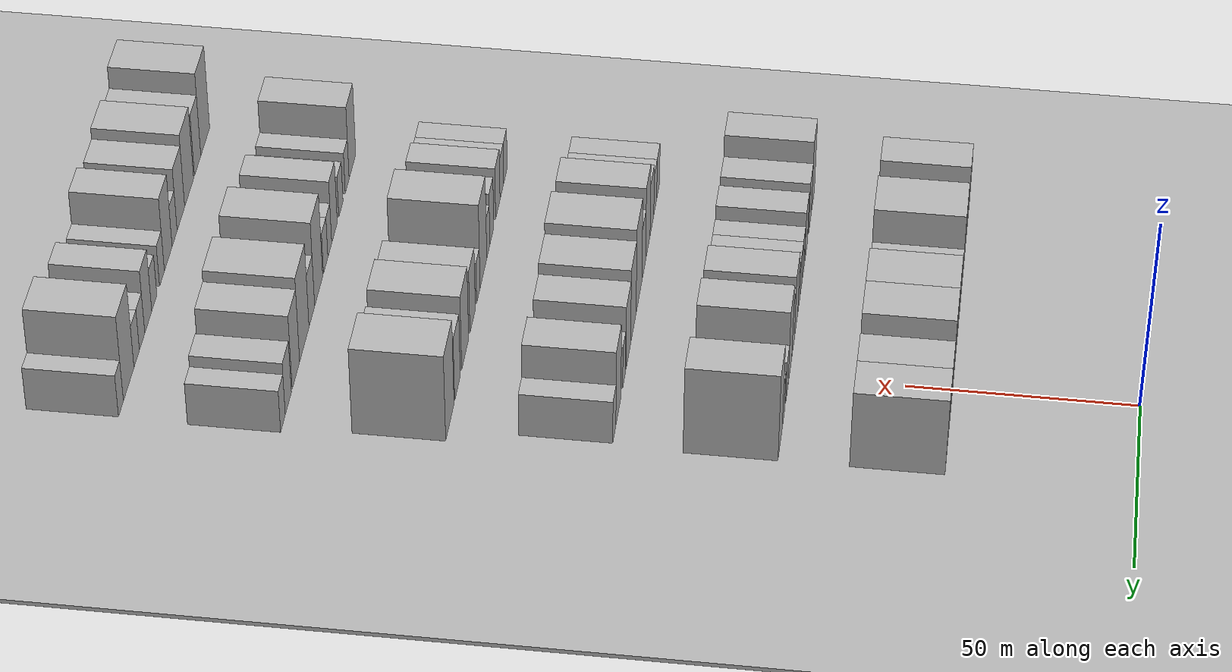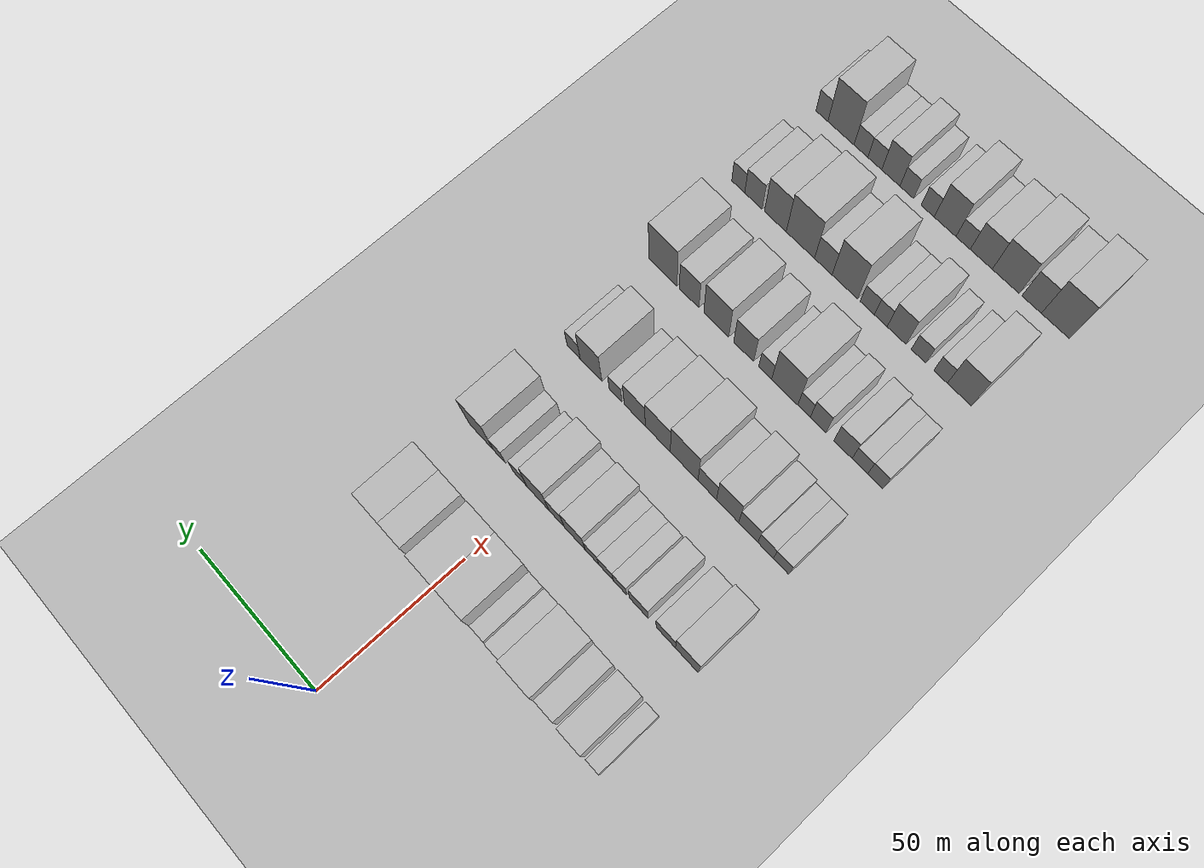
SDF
<sdf version="1.6">
 <world name="default">
  <include><name>ground_plane_1</name><uri>model://HANNAS_ground_plane</uri></include>
  <include>
   <name>ground_plane_2</name>
   <uri>model://HANNAS_ground_plane</uri>
   <pose>100 0 0  0 0 0</pose>
  </include>
  <model name="building_57">
   <static>1</static>
   <pose>50.0000 -62.6605 0 0.000000 0.000000 0.000000</pose>
   <link name="link">
    <pose>0 0 6.00 0 0 0</pose>
    <collision name="collision"><geometry><box><size>20.0000 4.8509 12.0000</size></box></geometry></collision>
    <visual name="visual">
     <cast_shadows>0</cast_shadows>
     <geometry><box><size>20.0000 4.8509 12.0000</size></box></geometry>
     <material>
      <script>
       <uri>model://HANNAS_wall/materials/scripts</uri>
       <uri>model://HANNAS_wall/materials/textures</uri>
       <name>vrc/HANNAS_wall</name>
      </script>
     </material>
    </visual>
   </link>
  </model>
  <model name="building_58">
   <static>1</static>
   <pose>50.0000 -54.9417 0 0.000000 0.000000 0.000000</pose>
   <link name="link">
    <pose>0 0 10.50 0 0 0</pose>
    <collision name="collision"><geometry><box><size>20.0000 8.5869 21.0000</size></box></geometry></collision>
    <visual name="visual">
     <cast_shadows>0</cast_shadows>
     <geometry><box><size>20.0000 8.5869 21.0000</size></box></geometry>
     <material>
      <script>
       <uri>model://HANNAS_wall/materials/scripts</uri>
       <uri>model://HANNAS_wall/materials/textures</uri>
       <name>vrc/HANNAS_wall</name>
      </script>
     </material>
    </visual>
   </link>
  </model>
  <model name="building_59">
   <static>1</static>
   <pose>50.0000 -45.0534 0 0.000000 0.000000 0.000000</pose>
   <link name="link">
    <pose>0 0 7.50 0 0 0</pose>
    <collision name="collision"><geometry><box><size>20.0000 7.1895 15.0000</size></box></geometry></collision>
    <visual name="visual">
     <cast_shadows>0</cast_shadows>
     <geometry><box><size>20.0000 7.1895 15.0000</size></box></geometry>
     <material>
      <script>
       <uri>model://HANNAS_wall/materials/scripts</uri>
       <uri>model://HANNAS_wall/materials/textures</uri>
       <name>vrc/HANNAS_wall</name>
      </script>
     </material>
    </visual>
   </link>
  </model>
  <model name="building_60">
   <static>1</static>
   <pose>50.0000 -35.5189 0 0.000000 0.000000 0.000000</pose>
   <link name="link">
    <pose>0 0 12.00 0 0 0</pose>
    <collision name="collision"><geometry><box><size>20.0000 11.8795 24.0000</size></box></geometry></collision>
    <visual name="visual">
     <cast_shadows>0</cast_shadows>
     <geometry><box><size>20.0000 11.8795 24.0000</size></box></geometry>
     <material>
      <script>
       <uri>model://HANNAS_wall/materials/scripts</uri>
       <uri>model://HANNAS_wall/materials/textures</uri>
       <name>vrc/HANNAS_wall</name>
      </script>
     </material>
    </visual>
   </link>
  </model>
  <model name="building_61">
   <static>1</static>
   <pose>50.0000 -26.2360 0 0.000000 0.000000 0.000000</pose>
   <link name="link">
    <pose>0 0 7.50 0 0 0</pose>
    <collision name="collision"><geometry><box><size>20.0000 6.6863 15.0000</size></box></geometry></collision>
    <visual name="visual">
     <cast_shadows>0</cast_shadows>
     <geometry><box><size>20.0000 6.6863 15.0000</size></box></geometry>
     <material>
      <script>
       <uri>model://HANNAS_wall/materials/scripts</uri>
       <uri>model://HANNAS_wall/materials/textures</uri>
       <name>vrc/HANNAS_wall</name>
      </script>
     </material>
    </visual>
   </link>
  </model>
  <model name="building_62">
   <static>1</static>
   <pose>50.0000 -19.1876 0 0.000000 0.000000 0.000000</pose>
   <link name="link">
    <pose>0 0 6.00 0 0 0</pose>
    <collision name="collision"><geometry><box><size>20.0000 5.4104 12.0000</size></box></geometry></collision>
    <visual name="visual">
     <cast_shadows>0</cast_shadows>
     <geometry><box><size>20.0000 5.4104 12.0000</size></box></geometry>
     <material>
      <script>
       <uri>model://HANNAS_wall/materials/scripts</uri>
       <uri>model://HANNAS_wall/materials/textures</uri>
       <name>vrc/HANNAS_wall</name>
      </script>
     </material>
    </visual>
   </link>
  </model>
  <model name="building_63">
   <static>1</static>
   <pose>50.0000 -11.0453 0 0.000000 0.000000 0.000000</pose>
   <link name="link">
    <pose>0 0 12.00 0 0 0</pose>
    <collision name="collision"><geometry><box><size>20.0000 10.8742 24.0000</size></box></geometry></collision>
    <visual name="visual">
     <cast_shadows>0</cast_shadows>
     <geometry><box><size>20.0000 10.8742 24.0000</size></box></geometry>
     <material>
      <script>
       <uri>model://HANNAS_wall/materials/scripts</uri>
       <uri>model://HANNAS_wall/materials/textures</uri>
       <name>vrc/HANNAS_wall</name>
      </script>
     </material>
    </visual>
   </link>
  </model>
  <model name="building_64">
   <static>1</static>
   <pose>50.0000 -0.2225 0 0.000000 0.000000 0.000000</pose>
   <link name="link">
    <pose>0 0 12.00 0 0 0</pose>
    <collision name="collision"><geometry><box><size>20.0000 10.7716 24.0000</size></box></geometry></collision>
    <visual name="visual">
     <cast_shadows>0</cast_shadows>
     <geometry><box><size>20.0000 10.7716 24.0000</size></box></geometry>
     <material>
      <script>
       <uri>model://HANNAS_wall/materials/scripts</uri>
       <uri>model://HANNAS_wall/materials/textures</uri>
       <name>vrc/HANNAS_wall</name>
      </script>
     </material>
    </visual>
   </link>
  </model>
  <model name="building_65">
   <static>1</static>
   <pose>50.0000 12.5621 0 0.000000 0.000000 0.000000</pose>
   <link name="link">
    <pose>0 0 10.50 0 0 0</pose>
    <collision name="collision"><geometry><box><size>20.0000 8.7975 21.0000</size></box></geometry></collision>
    <visual name="visual">
     <cast_shadows>0</cast_shadows>
     <geometry><box><size>20.0000 8.7975 21.0000</size></box></geometry>
     <material>
      <script>
       <uri>model://HANNAS_wall/materials/scripts</uri>
       <uri>model://HANNAS_wall/materials/textures</uri>
       <name>vrc/HANNAS_wall</name>
      </script>
     </material>
    </visual>
   </link>
  </model>
  <model name="building_66">
   <static>1</static>
   <pose>50.0000 22.1153 0 0.000000 0.000000 0.000000</pose>
   <link name="link">
    <pose>0 0 10.50 0 0 0</pose>
    <collision name="collision"><geometry><box><size>20.0000 10.3089 21.0000</size></box></geometry></collision>
    <visual name="visual">
     <cast_shadows>0</cast_shadows>
     <geometry><box><size>20.0000 10.3089 21.0000</size></box></geometry>
     <material>
      <script>
       <uri>model://HANNAS_wall/materials/scripts</uri>
       <uri>model://HANNAS_wall/materials/textures</uri>
       <name>vrc/HANNAS_wall</name>
      </script>
     </material>
    </visual>
   </link>
  </model>
  <model name="building_188">
   <static>1</static>
   <pose>85.0000 -59.6021 0 0.000000 0.000000 0.000000</pose>
   <link name="link">
    <pose>0 0 10.50 0 0 0</pose>
    <collision name="collision"><geometry><box><size>20.0000 8.5717 21.0000</size></box></geometry></collision>
    <visual name="visual">
     <cast_shadows>0</cast_shadows>
     <geometry><box><size>20.0000 8.5717 21.0000</size></box></geometry>
     <material>
      <script>
       <uri>model://HANNAS_wall/materials/scripts</uri>
       <uri>model://HANNAS_wall/materials/textures</uri>
       <name>vrc/HANNAS_wall</name>
      </script>
     </material>
    </visual>
   </link>
  </model>
  <model name="building_189">
   <static>1</static>
   <pose>85.0000 -51.6376 0 0.000000 0.000000 0.000000</pose>
   <link name="link">
    <pose>0 0 7.50 0 0 0</pose>
    <collision name="collision"><geometry><box><size>20.0000 7.3575 15.0000</size></box></geometry></collision>
    <visual name="visual">
     <cast_shadows>0</cast_shadows>
     <geometry><box><size>20.0000 7.3575 15.0000</size></box></geometry>
     <material>
      <script>
       <uri>model://HANNAS_wall/materials/scripts</uri>
       <uri>model://HANNAS_wall/materials/textures</uri>
       <name>vrc/HANNAS_wall</name>
      </script>
     </material>
    </visual>
   </link>
  </model>
  <model name="building_190">
   <static>1</static>
   <pose>85.0000 -41.3064 0 0.000000 0.000000 0.000000</pose>
   <link name="link">
    <pose>0 0 7.50 0 0 0</pose>
    <collision name="collision"><geometry><box><size>20.0000 7.3048 15.0000</size></box></geometry></collision>
    <visual name="visual">
     <cast_shadows>0</cast_shadows>
     <geometry><box><size>20.0000 7.3048 15.0000</size></box></geometry>
     <material>
      <script>
       <uri>model://HANNAS_wall/materials/scripts</uri>
       <uri>model://HANNAS_wall/materials/textures</uri>
       <name>vrc/HANNAS_wall</name>
      </script>
     </material>
    </visual>
   </link>
  </model>
  <model name="building_191">
   <static>1</static>
   <pose>85.0000 -34.0402 0 0.000000 0.000000 0.000000</pose>
   <link name="link">
    <pose>0 0 6.00 0 0 0</pose>
    <collision name="collision"><geometry><box><size>20.0000 5.2277 12.0000</size></box></geometry></collision>
    <visual name="visual">
     <cast_shadows>0</cast_shadows>
     <geometry><box><size>20.0000 5.2277 12.0000</size></box></geometry>
     <material>
      <script>
       <uri>model://HANNAS_wall/materials/scripts</uri>
       <uri>model://HANNAS_wall/materials/textures</uri>
       <name>vrc/HANNAS_wall</name>
      </script>
     </material>
    </visual>
   </link>
  </model>
  <model name="building_192">
   <static>1</static>
   <pose>85.0000 -28.5449 0 0.000000 0.000000 0.000000</pose>
   <link name="link">
    <pose>0 0 6.00 0 0 0</pose>
    <collision name="collision"><geometry><box><size>20.0000 5.7628 12.0000</size></box></geometry></collision>
    <visual name="visual">
     <cast_shadows>0</cast_shadows>
     <geometry><box><size>20.0000 5.7628 12.0000</size></box></geometry>
     <material>
      <script>
       <uri>model://HANNAS_wall/materials/scripts</uri>
       <uri>model://HANNAS_wall/materials/textures</uri>
       <name>vrc/HANNAS_wall</name>
      </script>
     </material>
    </visual>
   </link>
  </model>
  <model name="building_193">
   <static>1</static>
   <pose>85.0000 -23.0391 0 0.000000 0.000000 0.000000</pose>
   <link name="link">
    <pose>0 0 6.00 0 0 0</pose>
    <collision name="collision"><geometry><box><size>20.0000 5.2488 12.0000</size></box></geometry></collision>
    <visual name="visual">
     <cast_shadows>0</cast_shadows>
     <geometry><box><size>20.0000 5.2488 12.0000</size></box></geometry>
     <material>
      <script>
       <uri>model://HANNAS_wall/materials/scripts</uri>
       <uri>model://HANNAS_wall/materials/textures</uri>
       <name>vrc/HANNAS_wall</name>
      </script>
     </material>
    </visual>
   </link>
  </model>
  <model name="building_194">
   <static>1</static>
   <pose>85.0000 -16.1703 0 0.000000 0.000000 0.000000</pose>
   <link name="link">
    <pose>0 0 9.00 0 0 0</pose>
    <collision name="collision"><geometry><box><size>20.0000 8.4888 18.0000</size></box></geometry></collision>
    <visual name="visual">
     <cast_shadows>0</cast_shadows>
     <geometry><box><size>20.0000 8.4888 18.0000</size></box></geometry>
     <material>
      <script>
       <uri>model://HANNAS_wall/materials/scripts</uri>
       <uri>model://HANNAS_wall/materials/textures</uri>
       <name>vrc/HANNAS_wall</name>
      </script>
     </material>
    </visual>
   </link>
  </model>
  <model name="building_195">
   <static>1</static>
   <pose>85.0000 -8.8345 0 0.000000 0.000000 0.000000</pose>
   <link name="link">
    <pose>0 0 7.50 0 0 0</pose>
    <collision name="collision"><geometry><box><size>20.0000 6.1828 15.0000</size></box></geometry></collision>
    <visual name="visual">
     <cast_shadows>0</cast_shadows>
     <geometry><box><size>20.0000 6.1828 15.0000</size></box></geometry>
     <material>
      <script>
       <uri>model://HANNAS_wall/materials/scripts</uri>
       <uri>model://HANNAS_wall/materials/textures</uri>
       <name>vrc/HANNAS_wall</name>
      </script>
     </material>
    </visual>
   </link>
  </model>
  <model name="building_196">
   <static>1</static>
   <pose>85.0000 -1.1689 0 0.000000 0.000000 0.000000</pose>
   <link name="link">
    <pose>0 0 10.50 0 0 0</pose>
    <collision name="collision"><geometry><box><size>20.0000 9.1485 21.0000</size></box></geometry></collision>
    <visual name="visual">
     <cast_shadows>0</cast_shadows>
     <geometry><box><size>20.0000 9.1485 21.0000</size></box></geometry>
     <material>
      <script>
       <uri>model://HANNAS_wall/materials/scripts</uri>
       <uri>model://HANNAS_wall/materials/textures</uri>
       <name>vrc/HANNAS_wall</name>
      </script>
     </material>
    </visual>
   </link>
  </model>
  <model name="building_197">
   <static>1</static>
   <pose>85.0000 6.3032 0 0.000000 0.000000 0.000000</pose>
   <link name="link">
    <pose>0 0 6.00 0 0 0</pose>
    <collision name="collision"><geometry><box><size>20.0000 5.7957 12.0000</size></box></geometry></collision>
    <visual name="visual">
     <cast_shadows>0</cast_shadows>
     <geometry><box><size>20.0000 5.7957 12.0000</size></box></geometry>
     <material>
      <script>
       <uri>model://HANNAS_wall/materials/scripts</uri>
       <uri>model://HANNAS_wall/materials/textures</uri>
       <name>vrc/HANNAS_wall</name>
      </script>
     </material>
    </visual>
   </link>
  </model>
  <model name="building_198">
   <static>1</static>
   <pose>85.0000 14.7260 0 0.000000 0.000000 0.000000</pose>
   <link name="link">
    <pose>0 0 6.00 0 0 0</pose>
    <collision name="collision"><geometry><box><size>20.0000 5.0498 12.0000</size></box></geometry></collision>
    <visual name="visual">
     <cast_shadows>0</cast_shadows>
     <geometry><box><size>20.0000 5.0498 12.0000</size></box></geometry>
     <material>
      <script>
       <uri>model://HANNAS_wall/materials/scripts</uri>
       <uri>model://HANNAS_wall/materials/textures</uri>
       <name>vrc/HANNAS_wall</name>
      </script>
     </material>
    </visual>
   </link>
  </model>
  <model name="building_199">
   <static>1</static>
   <pose>85.0000 22.2918 0 0.000000 0.000000 0.000000</pose>
   <link name="link">
    <pose>0 0 12.00 0 0 0</pose>
    <collision name="collision"><geometry><box><size>20.0000 10.0819 24.0000</size></box></geometry></collision>
    <visual name="visual">
     <cast_shadows>0</cast_shadows>
     <geometry><box><size>20.0000 10.0819 24.0000</size></box></geometry>
     <material>
      <script>
       <uri>model://HANNAS_wall/materials/scripts</uri>
       <uri>model://HANNAS_wall/materials/textures</uri>
       <name>vrc/HANNAS_wall</name>
      </script>
     </material>
    </visual>
   </link>
  </model>
  <model name="building_310">
   <static>1</static>
   <pose>120.0000 -59.1007 0 0.000000 0.000000 0.000000</pose>
   <link name="link">
    <pose>0 0 6.00 0 0 0</pose>
    <collision name="collision"><geometry><box><size>20.0000 5.8062 12.0000</size></box></geometry></collision>
    <visual name="visual">
     <cast_shadows>0</cast_shadows>
     <geometry><box><size>20.0000 5.8062 12.0000</size></box></geometry>
     <material>
      <script>
       <uri>model://HANNAS_wall/materials/scripts</uri>
       <uri>model://HANNAS_wall/materials/textures</uri>
       <name>vrc/HANNAS_wall</name>
      </script>
     </material>
    </visual>
   </link>
  </model>
  <model name="building_311">
   <static>1</static>
   <pose>120.0000 -53.2488 0 0.000000 0.000000 0.000000</pose>
   <link name="link">
    <pose>0 0 6.00 0 0 0</pose>
    <collision name="collision"><geometry><box><size>20.0000 5.8976 12.0000</size></box></geometry></collision>
    <visual name="visual">
     <cast_shadows>0</cast_shadows>
     <geometry><box><size>20.0000 5.8976 12.0000</size></box></geometry>
     <material>
      <script>
       <uri>model://HANNAS_wall/materials/scripts</uri>
       <uri>model://HANNAS_wall/materials/textures</uri>
       <name>vrc/HANNAS_wall</name>
      </script>
     </material>
    </visual>
   </link>
  </model>
  <model name="building_312">
   <static>1</static>
   <pose>120.0000 -46.6303 0 0.000000 0.000000 0.000000</pose>
   <link name="link">
    <pose>0 0 7.50 0 0 0</pose>
    <collision name="collision"><geometry><box><size>20.0000 7.3393 15.0000</size></box></geometry></collision>
    <visual name="visual">
     <cast_shadows>0</cast_shadows>
     <geometry><box><size>20.0000 7.3393 15.0000</size></box></geometry>
     <material>
      <script>
       <uri>model://HANNAS_wall/materials/scripts</uri>
       <uri>model://HANNAS_wall/materials/textures</uri>
       <name>vrc/HANNAS_wall</name>
      </script>
     </material>
    </visual>
   </link>
  </model>
  <model name="building_313">
   <static>1</static>
   <pose>120.0000 -38.6594 0 0.000000 0.000000 0.000000</pose>
   <link name="link">
    <pose>0 0 10.50 0 0 0</pose>
    <collision name="collision"><geometry><box><size>20.0000 8.6024 21.0000</size></box></geometry></collision>
    <visual name="visual">
     <cast_shadows>0</cast_shadows>
     <geometry><box><size>20.0000 8.6024 21.0000</size></box></geometry>
     <material>
      <script>
       <uri>model://HANNAS_wall/materials/scripts</uri>
       <uri>model://HANNAS_wall/materials/textures</uri>
       <name>vrc/HANNAS_wall</name>
      </script>
     </material>
    </visual>
   </link>
  </model>
  <model name="building_314">
   <static>1</static>
   <pose>120.0000 -30.7536 0 0.000000 0.000000 0.000000</pose>
   <link name="link">
    <pose>0 0 7.50 0 0 0</pose>
    <collision name="collision"><geometry><box><size>20.0000 7.2092 15.0000</size></box></geometry></collision>
    <visual name="visual">
     <cast_shadows>0</cast_shadows>
     <geometry><box><size>20.0000 7.2092 15.0000</size></box></geometry>
     <material>
      <script>
       <uri>model://HANNAS_wall/materials/scripts</uri>
       <uri>model://HANNAS_wall/materials/textures</uri>
       <name>vrc/HANNAS_wall</name>
      </script>
     </material>
    </visual>
   </link>
  </model>
  <model name="building_315">
   <static>1</static>
   <pose>120.0000 -21.6644 0 0.000000 0.000000 0.000000</pose>
   <link name="link">
    <pose>0 0 12.00 0 0 0</pose>
    <collision name="collision"><geometry><box><size>20.0000 10.9693 24.0000</size></box></geometry></collision>
    <visual name="visual">
     <cast_shadows>0</cast_shadows>
     <geometry><box><size>20.0000 10.9693 24.0000</size></box></geometry>
     <material>
      <script>
       <uri>model://HANNAS_wall/materials/scripts</uri>
       <uri>model://HANNAS_wall/materials/textures</uri>
       <name>vrc/HANNAS_wall</name>
      </script>
     </material>
    </visual>
   </link>
  </model>
  <model name="building_316">
   <static>1</static>
   <pose>120.0000 -11.1569 0 0.000000 0.000000 0.000000</pose>
   <link name="link">
    <pose>0 0 10.50 0 0 0</pose>
    <collision name="collision"><geometry><box><size>20.0000 10.0457 21.0000</size></box></geometry></collision>
    <visual name="visual">
     <cast_shadows>0</cast_shadows>
     <geometry><box><size>20.0000 10.0457 21.0000</size></box></geometry>
     <material>
      <script>
       <uri>model://HANNAS_wall/materials/scripts</uri>
       <uri>model://HANNAS_wall/materials/textures</uri>
       <name>vrc/HANNAS_wall</name>
      </script>
     </material>
    </visual>
   </link>
  </model>
  <model name="building_317">
   <static>1</static>
   <pose>120.0000 -1.8390 0 0.000000 0.000000 0.000000</pose>
   <link name="link">
    <pose>0 0 9.00 0 0 0</pose>
    <collision name="collision"><geometry><box><size>20.0000 8.5903 18.0000</size></box></geometry></collision>
    <visual name="visual">
     <cast_shadows>0</cast_shadows>
     <geometry><box><size>20.0000 8.5903 18.0000</size></box></geometry>
     <material>
      <script>
       <uri>model://HANNAS_wall/materials/scripts</uri>
       <uri>model://HANNAS_wall/materials/textures</uri>
       <name>vrc/HANNAS_wall</name>
      </script>
     </material>
    </visual>
   </link>
  </model>
  <model name="building_318">
   <static>1</static>
   <pose>120.0000 6.0576 0 0.000000 0.000000 0.000000</pose>
   <link name="link">
    <pose>0 0 6.00 0 0 0</pose>
    <collision name="collision"><geometry><box><size>20.0000 5.2028 12.0000</size></box></geometry></collision>
    <visual name="visual">
     <cast_shadows>0</cast_shadows>
     <geometry><box><size>20.0000 5.2028 12.0000</size></box></geometry>
     <material>
      <script>
       <uri>model://HANNAS_wall/materials/scripts</uri>
       <uri>model://HANNAS_wall/materials/textures</uri>
       <name>vrc/HANNAS_wall</name>
      </script>
     </material>
    </visual>
   </link>
  </model>
  <model name="building_319">
   <static>1</static>
   <pose>120.0000 16.2037 0 0.000000 0.000000 0.000000</pose>
   <link name="link">
    <pose>0 0 10.50 0 0 0</pose>
    <collision name="collision"><geometry><box><size>20.0000 9.0895 21.0000</size></box></geometry></collision>
    <visual name="visual">
     <cast_shadows>0</cast_shadows>
     <geometry><box><size>20.0000 9.0895 21.0000</size></box></geometry>
     <material>
      <script>
       <uri>model://HANNAS_wall/materials/scripts</uri>
       <uri>model://HANNAS_wall/materials/textures</uri>
       <name>vrc/HANNAS_wall</name>
      </script>
     </material>
    </visual>
   </link>
  </model>
  <model name="building_320">
   <static>1</static>
   <pose>120.0000 23.4891 0 0.000000 0.000000 0.000000</pose>
   <link name="link">
    <pose>0 0 6.00 0 0 0</pose>
    <collision name="collision"><geometry><box><size>20.0000 5.4814 12.0000</size></box></geometry></collision>
    <visual name="visual">
     <cast_shadows>0</cast_shadows>
     <geometry><box><size>20.0000 5.4814 12.0000</size></box></geometry>
     <material>
      <script>
       <uri>model://HANNAS_wall/materials/scripts</uri>
       <uri>model://HANNAS_wall/materials/textures</uri>
       <name>vrc/HANNAS_wall</name>
      </script>
     </material>
    </visual>
   </link>
  </model>
  <model name="building_438">
   <static>1</static>
   <pose>155.0000 -60.2337 0 0.000000 0.000000 0.000000</pose>
   <link name="link">
    <pose>0 0 6.00 0 0 0</pose>
    <collision name="collision"><geometry><box><size>20.0000 5.6751 12.0000</size></box></geometry></collision>
    <visual name="visual">
     <cast_shadows>0</cast_shadows>
     <geometry><box><size>20.0000 5.6751 12.0000</size></box></geometry>
     <material>
      <script>
       <uri>model://HANNAS_wall/materials/scripts</uri>
       <uri>model://HANNAS_wall/materials/textures</uri>
       <name>vrc/HANNAS_wall</name>
      </script>
     </material>
    </visual>
   </link>
  </model>
  <model name="building_439">
   <static>1</static>
   <pose>155.0000 -54.4654 0 0.000000 0.000000 0.000000</pose>
   <link name="link">
    <pose>0 0 6.00 0 0 0</pose>
    <collision name="collision"><geometry><box><size>20.0000 5.8616 12.0000</size></box></geometry></collision>
    <visual name="visual">
     <cast_shadows>0</cast_shadows>
     <geometry><box><size>20.0000 5.8616 12.0000</size></box></geometry>
     <material>
      <script>
       <uri>model://HANNAS_wall/materials/scripts</uri>
       <uri>model://HANNAS_wall/materials/textures</uri>
       <name>vrc/HANNAS_wall</name>
      </script>
     </material>
    </visual>
   </link>
  </model>
  <model name="building_440">
   <static>1</static>
   <pose>155.0000 -48.0417 0 0.000000 0.000000 0.000000</pose>
   <link name="link">
    <pose>0 0 7.50 0 0 0</pose>
    <collision name="collision"><geometry><box><size>20.0000 6.9860 15.0000</size></box></geometry></collision>
    <visual name="visual">
     <cast_shadows>0</cast_shadows>
     <geometry><box><size>20.0000 6.9860 15.0000</size></box></geometry>
     <material>
      <script>
       <uri>model://HANNAS_wall/materials/scripts</uri>
       <uri>model://HANNAS_wall/materials/textures</uri>
       <name>vrc/HANNAS_wall</name>
      </script>
     </material>
    </visual>
   </link>
  </model>
  <model name="building_441">
   <static>1</static>
   <pose>155.0000 -38.5139 0 0.000000 0.000000 0.000000</pose>
   <link name="link">
    <pose>0 0 7.50 0 0 0</pose>
    <collision name="collision"><geometry><box><size>20.0000 6.0696 15.0000</size></box></geometry></collision>
    <visual name="visual">
     <cast_shadows>0</cast_shadows>
     <geometry><box><size>20.0000 6.0696 15.0000</size></box></geometry>
     <material>
      <script>
       <uri>model://HANNAS_wall/materials/scripts</uri>
       <uri>model://HANNAS_wall/materials/textures</uri>
       <name>vrc/HANNAS_wall</name>
      </script>
     </material>
    </visual>
   </link>
  </model>
  <model name="building_442">
   <static>1</static>
   <pose>155.0000 -33.0267 0 0.000000 0.000000 0.000000</pose>
   <link name="link">
    <pose>0 0 6.00 0 0 0</pose>
    <collision name="collision"><geometry><box><size>20.0000 4.9047 12.0000</size></box></geometry></collision>
    <visual name="visual">
     <cast_shadows>0</cast_shadows>
     <geometry><box><size>20.0000 4.9047 12.0000</size></box></geometry>
     <material>
      <script>
       <uri>model://HANNAS_wall/materials/scripts</uri>
       <uri>model://HANNAS_wall/materials/textures</uri>
       <name>vrc/HANNAS_wall</name>
      </script>
     </material>
    </visual>
   </link>
  </model>
  <model name="building_443">
   <static>1</static>
   <pose>155.0000 -25.4386 0 0.000000 0.000000 0.000000</pose>
   <link name="link">
    <pose>0 0 12.00 0 0 0</pose>
    <collision name="collision"><geometry><box><size>20.0000 10.2717 24.0000</size></box></geometry></collision>
    <visual name="visual">
     <cast_shadows>0</cast_shadows>
     <geometry><box><size>20.0000 10.2717 24.0000</size></box></geometry>
     <material>
      <script>
       <uri>model://HANNAS_wall/materials/scripts</uri>
       <uri>model://HANNAS_wall/materials/textures</uri>
       <name>vrc/HANNAS_wall</name>
      </script>
     </material>
    </visual>
   </link>
  </model>
  <model name="building_444">
   <static>1</static>
   <pose>155.0000 -17.7082 0 0.000000 0.000000 0.000000</pose>
   <link name="link">
    <pose>0 0 6.00 0 0 0</pose>
    <collision name="collision"><geometry><box><size>20.0000 5.1890 12.0000</size></box></geometry></collision>
    <visual name="visual">
     <cast_shadows>0</cast_shadows>
     <geometry><box><size>20.0000 5.1890 12.0000</size></box></geometry>
     <material>
      <script>
       <uri>model://HANNAS_wall/materials/scripts</uri>
       <uri>model://HANNAS_wall/materials/textures</uri>
       <name>vrc/HANNAS_wall</name>
      </script>
     </material>
    </visual>
   </link>
  </model>
  <model name="building_445">
   <static>1</static>
   <pose>155.0000 -9.0991 0 0.000000 0.000000 0.000000</pose>
   <link name="link">
    <pose>0 0 9.00 0 0 0</pose>
    <collision name="collision"><geometry><box><size>20.0000 8.0292 18.0000</size></box></geometry></collision>
    <visual name="visual">
     <cast_shadows>0</cast_shadows>
     <geometry><box><size>20.0000 8.0292 18.0000</size></box></geometry>
     <material>
      <script>
       <uri>model://HANNAS_wall/materials/scripts</uri>
       <uri>model://HANNAS_wall/materials/textures</uri>
       <name>vrc/HANNAS_wall</name>
      </script>
     </material>
    </visual>
   </link>
  </model>
  <model name="building_446">
   <static>1</static>
   <pose>155.0000 2.0157 0 0.000000 0.000000 0.000000</pose>
   <link name="link">
    <pose>0 0 10.50 0 0 0</pose>
    <collision name="collision"><geometry><box><size>20.0000 10.2005 21.0000</size></box></geometry></collision>
    <visual name="visual">
     <cast_shadows>0</cast_shadows>
     <geometry><box><size>20.0000 10.2005 21.0000</size></box></geometry>
     <material>
      <script>
       <uri>model://HANNAS_wall/materials/scripts</uri>
       <uri>model://HANNAS_wall/materials/textures</uri>
       <name>vrc/HANNAS_wall</name>
      </script>
     </material>
    </visual>
   </link>
  </model>
  <model name="building_447">
   <static>1</static>
   <pose>155.0000 13.1643 0 0.000000 0.000000 0.000000</pose>
   <link name="link">
    <pose>0 0 9.00 0 0 0</pose>
    <collision name="collision"><geometry><box><size>20.0000 8.0966 18.0000</size></box></geometry></collision>
    <visual name="visual">
     <cast_shadows>0</cast_shadows>
     <geometry><box><size>20.0000 8.0966 18.0000</size></box></geometry>
     <material>
      <script>
       <uri>model://HANNAS_wall/materials/scripts</uri>
       <uri>model://HANNAS_wall/materials/textures</uri>
       <name>vrc/HANNAS_wall</name>
      </script>
     </material>
    </visual>
   </link>
  </model>
  <model name="building_448">
   <static>1</static>
   <pose>155.0000 24.0950 0 0.000000 0.000000 0.000000</pose>
   <link name="link">
    <pose>0 0 12.00 0 0 0</pose>
    <collision name="collision"><geometry><box><size>20.0000 11.7648 24.0000</size></box></geometry></collision>
    <visual name="visual">
     <cast_shadows>0</cast_shadows>
     <geometry><box><size>20.0000 11.7648 24.0000</size></box></geometry>
     <material>
      <script>
       <uri>model://HANNAS_wall/materials/scripts</uri>
       <uri>model://HANNAS_wall/materials/textures</uri>
       <name>vrc/HANNAS_wall</name>
      </script>
     </material>
    </visual>
   </link>
  </model>
  <model name="building_570">
   <static>1</static>
   <pose>190.0000 -59.1827 0 0.000000 0.000000 0.000000</pose>
   <link name="link">
    <pose>0 0 10.50 0 0 0</pose>
    <collision name="collision"><geometry><box><size>20.0000 8.9861 21.0000</size></box></geometry></collision>
    <visual name="visual">
     <cast_shadows>0</cast_shadows>
     <geometry><box><size>20.0000 8.9861 21.0000</size></box></geometry>
     <material>
      <script>
       <uri>model://HANNAS_wall/materials/scripts</uri>
       <uri>model://HANNAS_wall/materials/textures</uri>
       <name>vrc/HANNAS_wall</name>
      </script>
     </material>
    </visual>
   </link>
  </model>
  <model name="building_571">
   <static>1</static>
   <pose>190.0000 -52.1039 0 0.000000 0.000000 0.000000</pose>
   <link name="link">
    <pose>0 0 6.00 0 0 0</pose>
    <collision name="collision"><geometry><box><size>20.0000 5.1715 12.0000</size></box></geometry></collision>
    <visual name="visual">
     <cast_shadows>0</cast_shadows>
     <geometry><box><size>20.0000 5.1715 12.0000</size></box></geometry>
     <material>
      <script>
       <uri>model://HANNAS_wall/materials/scripts</uri>
       <uri>model://HANNAS_wall/materials/textures</uri>
       <name>vrc/HANNAS_wall</name>
      </script>
     </material>
    </visual>
   </link>
  </model>
  <model name="building_572">
   <static>1</static>
   <pose>190.0000 -43.7088 0 0.000000 0.000000 0.000000</pose>
   <link name="link">
    <pose>0 0 6.00 0 0 0</pose>
    <collision name="collision"><geometry><box><size>20.0000 5.6187 12.0000</size></box></geometry></collision>
    <visual name="visual">
     <cast_shadows>0</cast_shadows>
     <geometry><box><size>20.0000 5.6187 12.0000</size></box></geometry>
     <material>
      <script>
       <uri>model://HANNAS_wall/materials/scripts</uri>
       <uri>model://HANNAS_wall/materials/textures</uri>
       <name>vrc/HANNAS_wall</name>
      </script>
     </material>
    </visual>
   </link>
  </model>
  <model name="building_573">
   <static>1</static>
   <pose>190.0000 -35.2443 0 0.000000 0.000000 0.000000</pose>
   <link name="link">
    <pose>0 0 9.00 0 0 0</pose>
    <collision name="collision"><geometry><box><size>20.0000 7.3103 18.0000</size></box></geometry></collision>
    <visual name="visual">
     <cast_shadows>0</cast_shadows>
     <geometry><box><size>20.0000 7.3103 18.0000</size></box></geometry>
     <material>
      <script>
       <uri>model://HANNAS_wall/materials/scripts</uri>
       <uri>model://HANNAS_wall/materials/textures</uri>
       <name>vrc/HANNAS_wall</name>
      </script>
     </material>
    </visual>
   </link>
  </model>
  <model name="building_574">
   <static>1</static>
   <pose>190.0000 -29.0952 0 0.000000 0.000000 0.000000</pose>
   <link name="link">
    <pose>0 0 6.00 0 0 0</pose>
    <collision name="collision"><geometry><box><size>20.0000 4.9880 12.0000</size></box></geometry></collision>
    <visual name="visual">
     <cast_shadows>0</cast_shadows>
     <geometry><box><size>20.0000 4.9880 12.0000</size></box></geometry>
     <material>
      <script>
       <uri>model://HANNAS_wall/materials/scripts</uri>
       <uri>model://HANNAS_wall/materials/textures</uri>
       <name>vrc/HANNAS_wall</name>
      </script>
     </material>
    </visual>
   </link>
  </model>
  <model name="building_575">
   <static>1</static>
   <pose>190.0000 -23.7728 0 0.000000 0.000000 0.000000</pose>
   <link name="link">
    <pose>0 0 6.00 0 0 0</pose>
    <collision name="collision"><geometry><box><size>20.0000 5.6567 12.0000</size></box></geometry></collision>
    <visual name="visual">
     <cast_shadows>0</cast_shadows>
     <geometry><box><size>20.0000 5.6567 12.0000</size></box></geometry>
     <material>
      <script>
       <uri>model://HANNAS_wall/materials/scripts</uri>
       <uri>model://HANNAS_wall/materials/textures</uri>
       <name>vrc/HANNAS_wall</name>
      </script>
     </material>
    </visual>
   </link>
  </model>
  <model name="building_576">
   <static>1</static>
   <pose>190.0000 -14.8475 0 0.000000 0.000000 0.000000</pose>
   <link name="link">
    <pose>0 0 12.00 0 0 0</pose>
    <collision name="collision"><geometry><box><size>20.0000 10.1940 24.0000</size></box></geometry></collision>
    <visual name="visual">
     <cast_shadows>0</cast_shadows>
     <geometry><box><size>20.0000 10.1940 24.0000</size></box></geometry>
     <material>
      <script>
       <uri>model://HANNAS_wall/materials/scripts</uri>
       <uri>model://HANNAS_wall/materials/textures</uri>
       <name>vrc/HANNAS_wall</name>
      </script>
     </material>
    </visual>
   </link>
  </model>
  <model name="building_577">
   <static>1</static>
   <pose>190.0000 -6.2127 0 0.000000 0.000000 0.000000</pose>
   <link name="link">
    <pose>0 0 7.50 0 0 0</pose>
    <collision name="collision"><geometry><box><size>20.0000 7.0756 15.0000</size></box></geometry></collision>
    <visual name="visual">
     <cast_shadows>0</cast_shadows>
     <geometry><box><size>20.0000 7.0756 15.0000</size></box></geometry>
     <material>
      <script>
       <uri>model://HANNAS_wall/materials/scripts</uri>
       <uri>model://HANNAS_wall/materials/textures</uri>
       <name>vrc/HANNAS_wall</name>
      </script>
     </material>
    </visual>
   </link>
  </model>
  <model name="building_578">
   <static>1</static>
   <pose>190.0000 3.1016 0 0.000000 0.000000 0.000000</pose>
   <link name="link">
    <pose>0 0 12.00 0 0 0</pose>
    <collision name="collision"><geometry><box><size>20.0000 11.5529 24.0000</size></box></geometry></collision>
    <visual name="visual">
     <cast_shadows>0</cast_shadows>
     <geometry><box><size>20.0000 11.5529 24.0000</size></box></geometry>
     <material>
      <script>
       <uri>model://HANNAS_wall/materials/scripts</uri>
       <uri>model://HANNAS_wall/materials/textures</uri>
       <name>vrc/HANNAS_wall</name>
      </script>
     </material>
    </visual>
   </link>
  </model>
  <model name="building_579">
   <static>1</static>
   <pose>190.0000 13.3819 0 0.000000 0.000000 0.000000</pose>
   <link name="link">
    <pose>0 0 10.50 0 0 0</pose>
    <collision name="collision"><geometry><box><size>20.0000 9.0077 21.0000</size></box></geometry></collision>
    <visual name="visual">
     <cast_shadows>0</cast_shadows>
     <geometry><box><size>20.0000 9.0077 21.0000</size></box></geometry>
     <material>
      <script>
       <uri>model://HANNAS_wall/materials/scripts</uri>
       <uri>model://HANNAS_wall/materials/textures</uri>
       <name>vrc/HANNAS_wall</name>
      </script>
     </material>
    </visual>
   </link>
  </model>
  <model name="building_580">
   <static>1</static>
   <pose>190.0000 22.5235 0 0.000000 0.000000 0.000000</pose>
   <link name="link">
    <pose>0 0 7.50 0 0 0</pose>
    <collision name="collision"><geometry><box><size>20.0000 7.2756 15.0000</size></box></geometry></collision>
    <visual name="visual">
     <cast_shadows>0</cast_shadows>
     <geometry><box><size>20.0000 7.2756 15.0000</size></box></geometry>
     <material>
      <script>
       <uri>model://HANNAS_wall/materials/scripts</uri>
       <uri>model://HANNAS_wall/materials/textures</uri>
       <name>vrc/HANNAS_wall</name>
      </script>
     </material>
    </visual>
   </link>
  </model>
  <model name="building_581">
   <static>1</static>
   <pose>190.0000 28.8966 0 0.000000 0.000000 0.000000</pose>
   <link name="link">
    <pose>0 0 6.00 0 0 0</pose>
    <collision name="collision"><geometry><box><size>20.0000 5.4707 12.0000</size></box></geometry></collision>
    <visual name="visual">
     <cast_shadows>0</cast_shadows>
     <geometry><box><size>20.0000 5.4707 12.0000</size></box></geometry>
     <material>
      <script>
       <uri>model://HANNAS_wall/materials/scripts</uri>
       <uri>model://HANNAS_wall/materials/textures</uri>
       <name>vrc/HANNAS_wall</name>
      </script>
     </material>
    </visual>
   </link>
  </model>
  <model name="building_695">
   <static>1</static>
   <pose>225.0000 -64.0582 0 0.000000 0.000000 0.000000</pose>
   <link name="link">
    <pose>0 0 12.00 0 0 0</pose>
    <collision name="collision"><geometry><box><size>20.0000 10.4472 24.0000</size></box></geometry></collision>
    <visual name="visual">
     <cast_shadows>0</cast_shadows>
     <geometry><box><size>20.0000 10.4472 24.0000</size></box></geometry>
     <material>
      <script>
       <uri>model://HANNAS_wall/materials/scripts</uri>
       <uri>model://HANNAS_wall/materials/textures</uri>
       <name>vrc/HANNAS_wall</name>
      </script>
     </material>
    </visual>
   </link>
  </model>
  <model name="building_696">
   <static>1</static>
   <pose>225.0000 -55.1449 0 0.000000 0.000000 0.000000</pose>
   <link name="link">
    <pose>0 0 9.00 0 0 0</pose>
    <collision name="collision"><geometry><box><size>20.0000 7.3795 18.0000</size></box></geometry></collision>
    <visual name="visual">
     <cast_shadows>0</cast_shadows>
     <geometry><box><size>20.0000 7.3795 18.0000</size></box></geometry>
     <material>
      <script>
       <uri>model://HANNAS_wall/materials/scripts</uri>
       <uri>model://HANNAS_wall/materials/textures</uri>
       <name>vrc/HANNAS_wall</name>
      </script>
     </material>
    </visual>
   </link>
  </model>
  <model name="building_697">
   <static>1</static>
   <pose>225.0000 -45.3014 0 0.000000 0.000000 0.000000</pose>
   <link name="link">
    <pose>0 0 10.50 0 0 0</pose>
    <collision name="collision"><geometry><box><size>20.0000 10.3076 21.0000</size></box></geometry></collision>
    <visual name="visual">
     <cast_shadows>0</cast_shadows>
     <geometry><box><size>20.0000 10.3076 21.0000</size></box></geometry>
     <material>
      <script>
       <uri>model://HANNAS_wall/materials/scripts</uri>
       <uri>model://HANNAS_wall/materials/textures</uri>
       <name>vrc/HANNAS_wall</name>
      </script>
     </material>
    </visual>
   </link>
  </model>
  <model name="building_698">
   <static>1</static>
   <pose>225.0000 -35.8736 0 0.000000 0.000000 0.000000</pose>
   <link name="link">
    <pose>0 0 9.00 0 0 0</pose>
    <collision name="collision"><geometry><box><size>20.0000 8.5480 18.0000</size></box></geometry></collision>
    <visual name="visual">
     <cast_shadows>0</cast_shadows>
     <geometry><box><size>20.0000 8.5480 18.0000</size></box></geometry>
     <material>
      <script>
       <uri>model://HANNAS_wall/materials/scripts</uri>
       <uri>model://HANNAS_wall/materials/textures</uri>
       <name>vrc/HANNAS_wall</name>
      </script>
     </material>
    </visual>
   </link>
  </model>
  <model name="building_699">
   <static>1</static>
   <pose>225.0000 -28.8068 0 0.000000 0.000000 0.000000</pose>
   <link name="link">
    <pose>0 0 6.00 0 0 0</pose>
    <collision name="collision"><geometry><box><size>20.0000 5.5856 12.0000</size></box></geometry></collision>
    <visual name="visual">
     <cast_shadows>0</cast_shadows>
     <geometry><box><size>20.0000 5.5856 12.0000</size></box></geometry>
     <material>
      <script>
       <uri>model://HANNAS_wall/materials/scripts</uri>
       <uri>model://HANNAS_wall/materials/textures</uri>
       <name>vrc/HANNAS_wall</name>
      </script>
     </material>
    </visual>
   </link>
  </model>
  <model name="building_700">
   <static>1</static>
   <pose>225.0000 -21.7232 0 0.000000 0.000000 0.000000</pose>
   <link name="link">
    <pose>0 0 10.50 0 0 0</pose>
    <collision name="collision"><geometry><box><size>20.0000 8.5815 21.0000</size></box></geometry></collision>
    <visual name="visual">
     <cast_shadows>0</cast_shadows>
     <geometry><box><size>20.0000 8.5815 21.0000</size></box></geometry>
     <material>
      <script>
       <uri>model://HANNAS_wall/materials/scripts</uri>
       <uri>model://HANNAS_wall/materials/textures</uri>
       <name>vrc/HANNAS_wall</name>
      </script>
     </material>
    </visual>
   </link>
  </model>
  <model name="building_701">
   <static>1</static>
   <pose>225.0000 -14.8048 0 0.000000 0.000000 0.000000</pose>
   <link name="link">
    <pose>0 0 6.00 0 0 0</pose>
    <collision name="collision"><geometry><box><size>20.0000 5.2553 12.0000</size></box></geometry></collision>
    <visual name="visual">
     <cast_shadows>0</cast_shadows>
     <geometry><box><size>20.0000 5.2553 12.0000</size></box></geometry>
     <material>
      <script>
       <uri>model://HANNAS_wall/materials/scripts</uri>
       <uri>model://HANNAS_wall/materials/textures</uri>
       <name>vrc/HANNAS_wall</name>
      </script>
     </material>
    </visual>
   </link>
  </model>
  <model name="building_702">
   <static>1</static>
   <pose>225.0000 -6.4175 0 0.000000 0.000000 0.000000</pose>
   <link name="link">
    <pose>0 0 6.00 0 0 0</pose>
    <collision name="collision"><geometry><box><size>20.0000 5.5195 12.0000</size></box></geometry></collision>
    <visual name="visual">
     <cast_shadows>0</cast_shadows>
     <geometry><box><size>20.0000 5.5195 12.0000</size></box></geometry>
     <material>
      <script>
       <uri>model://HANNAS_wall/materials/scripts</uri>
       <uri>model://HANNAS_wall/materials/textures</uri>
       <name>vrc/HANNAS_wall</name>
      </script>
     </material>
    </visual>
   </link>
  </model>
  <model name="building_703">
   <static>1</static>
   <pose>225.0000 0.0507 0 0.000000 0.000000 0.000000</pose>
   <link name="link">
    <pose>0 0 9.00 0 0 0</pose>
    <collision name="collision"><geometry><box><size>20.0000 7.4169 18.0000</size></box></geometry></collision>
    <visual name="visual">
     <cast_shadows>0</cast_shadows>
     <geometry><box><size>20.0000 7.4169 18.0000</size></box></geometry>
     <material>
      <script>
       <uri>model://HANNAS_wall/materials/scripts</uri>
       <uri>model://HANNAS_wall/materials/textures</uri>
       <name>vrc/HANNAS_wall</name>
      </script>
     </material>
    </visual>
   </link>
  </model>
  <model name="building_704">
   <static>1</static>
   <pose>225.0000 6.6151 0 0.000000 0.000000 0.000000</pose>
   <link name="link">
    <pose>0 0 6.00 0 0 0</pose>
    <collision name="collision"><geometry><box><size>20.0000 5.7118 12.0000</size></box></geometry></collision>
    <visual name="visual">
     <cast_shadows>0</cast_shadows>
     <geometry><box><size>20.0000 5.7118 12.0000</size></box></geometry>
     <material>
      <script>
       <uri>model://HANNAS_wall/materials/scripts</uri>
       <uri>model://HANNAS_wall/materials/textures</uri>
       <name>vrc/HANNAS_wall</name>
      </script>
     </material>
    </visual>
   </link>
  </model>
  <model name="building_705">
   <static>1</static>
   <pose>225.0000 12.3192 0 0.000000 0.000000 0.000000</pose>
   <link name="link">
    <pose>0 0 6.00 0 0 0</pose>
    <collision name="collision"><geometry><box><size>20.0000 5.6965 12.0000</size></box></geometry></collision>
    <visual name="visual">
     <cast_shadows>0</cast_shadows>
     <geometry><box><size>20.0000 5.6965 12.0000</size></box></geometry>
     <material>
      <script>
       <uri>model://HANNAS_wall/materials/scripts</uri>
       <uri>model://HANNAS_wall/materials/textures</uri>
       <name>vrc/HANNAS_wall</name>
      </script>
     </material>
    </visual>
   </link>
  </model>
  <model name="building_706">
   <static>1</static>
   <pose>225.0000 20.6222 0 0.000000 0.000000 0.000000</pose>
   <link name="link">
    <pose>0 0 12.00 0 0 0</pose>
    <collision name="collision"><geometry><box><size>20.0000 10.9097 24.0000</size></box></geometry></collision>
    <visual name="visual">
     <cast_shadows>0</cast_shadows>
     <geometry><box><size>20.0000 10.9097 24.0000</size></box></geometry>
     <material>
      <script>
       <uri>model://HANNAS_wall/materials/scripts</uri>
       <uri>model://HANNAS_wall/materials/textures</uri>
       <name>vrc/HANNAS_wall</name>
      </script>
     </material>
    </visual>
   </link>
  </model>
  <model name="building_707">
   <static>1</static>
   <pose>225.0000 28.5887 0 0.000000 0.000000 0.000000</pose>
   <link name="link">
    <pose>0 0 6.00 0 0 0</pose>
    <collision name="collision"><geometry><box><size>20.0000 5.0232 12.0000</size></box></geometry></collision>
    <visual name="visual">
     <cast_shadows>0</cast_shadows>
     <geometry><box><size>20.0000 5.0232 12.0000</size></box></geometry>
     <material>
      <script>
       <uri>model://HANNAS_wall/materials/scripts</uri>
       <uri>model://HANNAS_wall/materials/textures</uri>
       <name>vrc/HANNAS_wall</name>
      </script>
     </material>
    </visual>
   </link>
  </model>
 </world>
</sdf>
